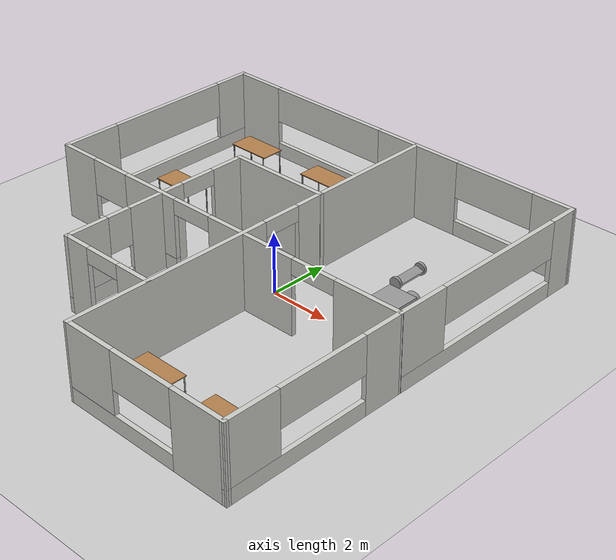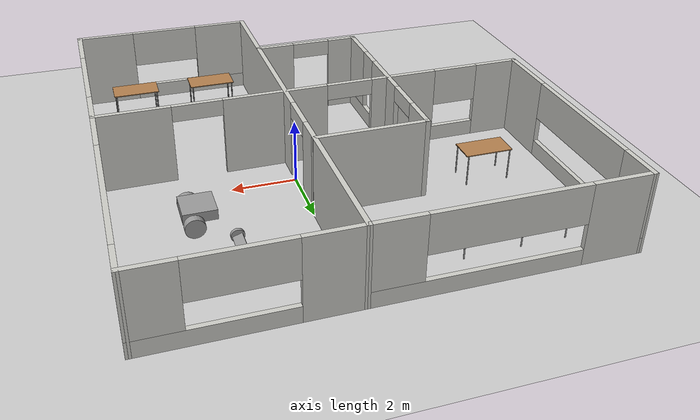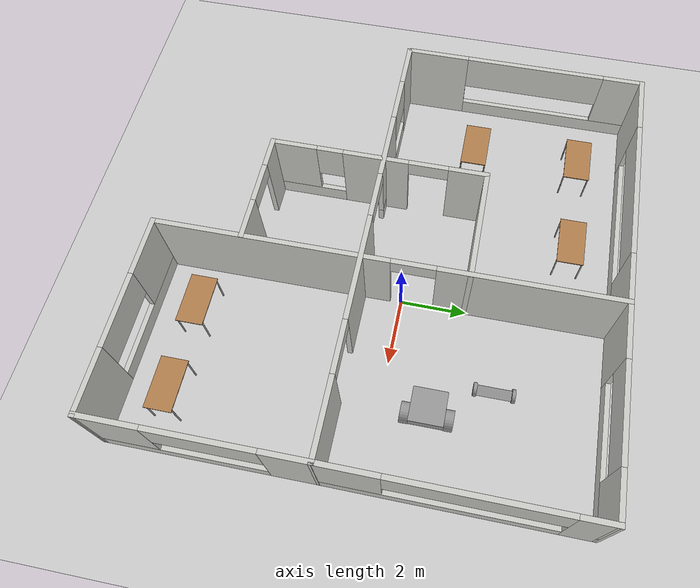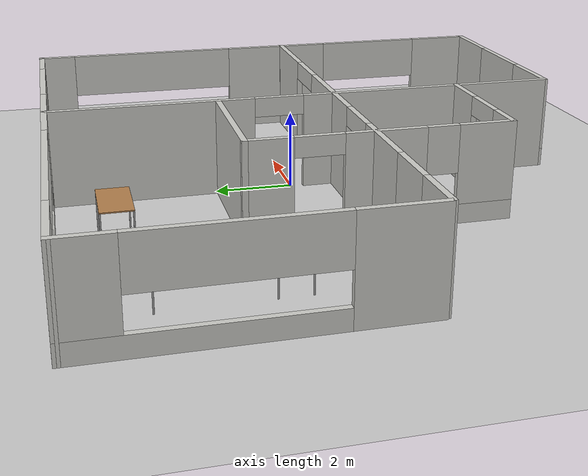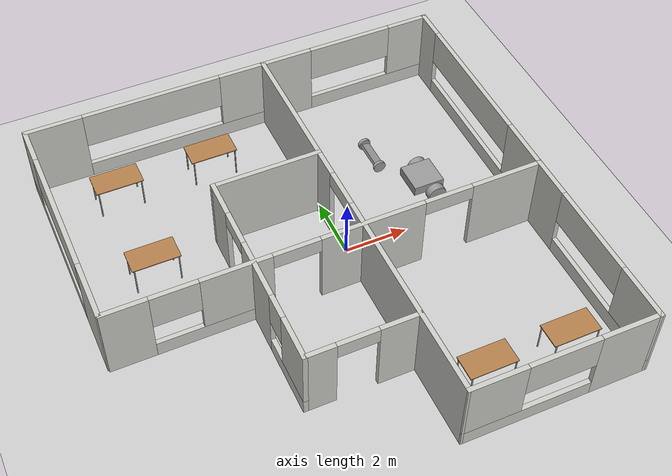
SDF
<sdf version="1.6">
 <world name="default">
  <plugin name="welcome" filename="libwelcome.so"/>
  <light name="sun" type="directional">
   <pose>0 0 10 0 -0 0</pose>
   <diffuse>0.8 0.8 0.8 1</diffuse>
   <specular>0.2 0.2 0.2 1</specular>
   <attenuation>
    <range>1000</range>
    <constant>0.9</constant>
    <linear>0.01</linear>
    <quadratic>0.001</quadratic>
   </attenuation>
   <direction>-0.5 0.1 -0.9</direction>
  </light>
  <model name="ground_plane">
   <static>1</static>
   <link name="link">
    <collision name="collision">
     <geometry><plane><normal>0 0 1</normal><size>100 100</size></plane></geometry>
     <surface>
      <contact><collide_bitmask>65535</collide_bitmask></contact>
      <friction><ode><mu>100</mu><mu2>50</mu2></ode></friction>
     </surface>
    </collision>
    <visual name="visual">
     <cast_shadows>0</cast_shadows>
     <geometry><plane><normal>0 0 1</normal><size>100 100</size></plane></geometry>
     <material>
      <script><uri>file://media/materials/scripts/gazebo.material</uri><name>Gazebo/Grey</name></script>
     </material>
    </visual>
   </link>
  </model>
  <gravity>0 0 -9.8</gravity>
  <magnetic_field>6e-06 2.3e-05 -4.2e-05</magnetic_field>
  <atmosphere type="adiabatic"/>
  <physics name="default_physics" default="0" type="ode">
   <max_step_size>0.001</max_step_size>
   <real_time_factor>1</real_time_factor>
   <real_time_update_rate>1000</real_time_update_rate>
  </physics>
  <scene><ambient>0.4 0.4 0.4 1</ambient><background>0.7 0.7 0.7 1</background><shadows>1</shadows></scene>
  <spherical_coordinates>
   <surface_model>EARTH_WGS84</surface_model>
   <latitude_deg>0</latitude_deg>
   <longitude_deg>0</longitude_deg>
   <elevation>0</elevation>
   <heading_deg>0</heading_deg>
  </spherical_coordinates>
  <model name="floor">
   <pose>-1.0352 -0.48407 0 0 -0 0</pose>
   <link name="Wall_0">
    <collision name="Wall_0_Collision">
     <geometry><box><size>3.5 0.15 2.5</size></box></geometry>
     <pose>0 0 1.25 0 -0 0</pose>
    </collision>
    <visual name="Wall_0_Visual">
     <pose>0 0 1.25 0 -0 0</pose>
     <geometry><box><size>3.5 0.15 2.5</size></box></geometry>
     <material>
      <script><uri>file://media/materials/scripts/gazebo.material</uri><name>Gazebo/CeilingTiled</name></script>
      <ambient>0.921569 0.807843 0.615686 1</ambient>
     </material>
     <meta><layer>0</layer></meta>
    </visual>
    <pose>-0.680453 2.40138 0 0 -0 0</pose>
   </link>
   <link name="Wall_10">
    <pose>3.86966 6.71461 0 0 -0 0</pose>
    <visual name="Wall_10_Visual_0">
     <pose>-2.10615 0 1.25 0 -0 0</pose>
     <geometry><box><size>1.71925 0.15 2.5</size></box></geometry>
     <material>
      <script><uri>file://media/materials/scripts/gazebo.material</uri><name>Gazebo/CeilingTiled</name></script>
      <ambient>0.996078 0.47451 0.0196078 1</ambient>
     </material>
     <meta><layer>0</layer></meta>
    </visual>
    <collision name="Wall_10_Collision_0">
     <geometry><box><size>1.71925 0.15 2.5</size></box></geometry>
     <pose>-2.10615 0 1.25 0 -0 0</pose>
    </collision>
    <visual name="Wall_10_Visual_1">
     <pose>0.859627 0 0.25 0 -0 0</pose>
     <geometry><box><size>4.2123 0.15 0.5</size></box></geometry>
     <material>
      <script><uri>file://media/materials/scripts/gazebo.material</uri><name>Gazebo/CeilingTiled</name></script>
      <ambient>0.996078 0.47451 0.0196078 1</ambient>
     </material>
     <meta><layer>0</layer></meta>
    </visual>
    <collision name="Wall_10_Collision_1">
     <geometry><box><size>4.2123 0.15 0.5</size></box></geometry>
     <pose>0.859627 0 0.25 0 -0 0</pose>
    </collision>
    <visual name="Wall_10_Visual_2">
     <pose>2.25525 0 1.5 0 -0 0</pose>
     <geometry><box><size>1.42105 0.15 2</size></box></geometry>
     <material>
      <script><uri>file://media/materials/scripts/gazebo.material</uri><name>Gazebo/CeilingTiled</name></script>
      <ambient>0.996078 0.47451 0.0196078 1</ambient>
     </material>
     <meta><layer>0</layer></meta>
    </visual>
    <collision name="Wall_10_Collision_2">
     <geometry><box><size>1.42105 0.15 2</size></box></geometry>
     <pose>2.25525 0 1.5 0 -0 0</pose>
    </collision>
    <visual name="Wall_10_Visual_3">
     <pose>0.1491 0 1.9 0 -0 0</pose>
     <geometry><box><size>2.79124 0.15 1.2</size></box></geometry>
     <material>
      <script><uri>file://media/materials/scripts/gazebo.material</uri><name>Gazebo/CeilingTiled</name></script>
      <ambient>0.996078 0.47451 0.0196078 1</ambient>
     </material>
     <meta><layer>0</layer></meta>
    </visual>
    <collision name="Wall_10_Collision_3">
     <geometry><box><size>2.79124 0.15 1.2</size></box></geometry>
     <pose>0.1491 0 1.9 0 -0 0</pose>
    </collision>
   </link>
   <link name="Wall_11">
    <pose>6.74514 3.02848 0 0 0 -1.57495</pose>
    <visual name="Wall_11_Visual_0">
     <pose>-3.24419 0 1.25 0 -0 0</pose>
     <geometry><box><size>1.03393 0.15 2.5</size></box></geometry>
     <material>
      <script><uri>file://media/materials/scripts/gazebo.material</uri><name>Gazebo/CeilingTiled</name></script>
      <ambient>0.996078 0.47451 0.0196078 1</ambient>
     </material>
     <meta><layer>0</layer></meta>
    </visual>
    <collision name="Wall_11_Collision_0">
     <geometry><box><size>1.03393 0.15 2.5</size></box></geometry>
     <pose>-3.24419 0 1.25 0 -0 0</pose>
    </collision>
    <visual name="Wall_11_Visual_1">
     <pose>0.516965 0 0.25 0 -0 0</pose>
     <geometry><box><size>6.48838 0.15 0.5</size></box></geometry>
     <material>
      <script><uri>file://media/materials/scripts/gazebo.material</uri><name>Gazebo/CeilingTiled</name></script>
      <ambient>0.996078 0.47451 0.0196078 1</ambient>
     </material>
     <meta><layer>0</layer></meta>
    </visual>
    <collision name="Wall_11_Collision_1">
     <geometry><box><size>6.48838 0.15 0.5</size></box></geometry>
     <pose>0.516965 0 0.25 0 -0 0</pose>
    </collision>
    <visual name="Wall_11_Visual_2">
     <pose>2.86792 0 1.5 0 -0 0</pose>
     <geometry><box><size>1.78646 0.15 2</size></box></geometry>
     <material>
      <script><uri>file://media/materials/scripts/gazebo.material</uri><name>Gazebo/CeilingTiled</name></script>
      <ambient>0.996078 0.47451 0.0196078 1</ambient>
     </material>
     <meta><layer>0</layer></meta>
    </visual>
    <collision name="Wall_11_Collision_2">
     <geometry><box><size>1.78646 0.15 2</size></box></geometry>
     <pose>2.86792 0 1.5 0 -0 0</pose>
    </collision>
    <visual name="Wall_11_Visual_3">
     <pose>-0.376266 0 1.9 0 -0 0</pose>
     <geometry><box><size>4.70192 0.15 1.2</size></box></geometry>
     <material>
      <script><uri>file://media/materials/scripts/gazebo.material</uri><name>Gazebo/CeilingTiled</name></script>
      <ambient>0.996078 0.47451 0.0196078 1</ambient>
     </material>
     <meta><layer>0</layer></meta>
    </visual>
    <collision name="Wall_11_Collision_3">
     <geometry><box><size>4.70192 0.15 1.2</size></box></geometry>
     <pose>-0.376266 0 1.9 0 -0 0</pose>
    </collision>
   </link>
   <link name="Wall_13">
    <pose>-6.76045 3.04378 0 0 -0 1.5708</pose>
    <visual name="Wall_13_Visual_0">
     <pose>-2.80286 0 1.25 0 -0 0</pose>
     <geometry><box><size>1.94712 0.15 2.5</size></box></geometry>
     <material>
      <script><uri>file://media/materials/scripts/gazebo.material</uri><name>Gazebo/CeilingTiled</name></script>
      <ambient>0.996078 0.47451 0.0196078 1</ambient>
     </material>
     <meta><layer>0</layer></meta>
    </visual>
    <collision name="Wall_13_Collision_0">
     <geometry><box><size>1.94712 0.15 2.5</size></box></geometry>
     <pose>-2.80286 0 1.25 0 -0 0</pose>
    </collision>
    <visual name="Wall_13_Visual_1">
     <pose>0.97356 0 0.25 0 -0 0</pose>
     <geometry><box><size>5.60571 0.15 0.5</size></box></geometry>
     <material>
      <script><uri>file://media/materials/scripts/gazebo.material</uri><name>Gazebo/CeilingTiled</name></script>
      <ambient>0.996078 0.47451 0.0196078 1</ambient>
     </material>
     <meta><layer>0</layer></meta>
    </visual>
    <collision name="Wall_13_Collision_1">
     <geometry><box><size>5.60571 0.15 0.5</size></box></geometry>
     <pose>0.97356 0 0.25 0 -0 0</pose>
    </collision>
    <visual name="Wall_13_Visual_2">
     <pose>3.1335 0 1.5 0 -0 0</pose>
     <geometry><box><size>1.28584 0.15 2</size></box></geometry>
     <material>
      <script><uri>file://media/materials/scripts/gazebo.material</uri><name>Gazebo/CeilingTiled</name></script>
      <ambient>0.996078 0.47451 0.0196078 1</ambient>
     </material>
     <meta><layer>0</layer></meta>
    </visual>
    <collision name="Wall_13_Collision_2">
     <geometry><box><size>1.28584 0.15 2</size></box></geometry>
     <pose>3.1335 0 1.5 0 -0 0</pose>
    </collision>
    <visual name="Wall_13_Visual_3">
     <pose>0.330641 0 1.9 0 -0 0</pose>
     <geometry><box><size>4.31987 0.15 1.2</size></box></geometry>
     <material>
      <script><uri>file://media/materials/scripts/gazebo.material</uri><name>Gazebo/CeilingTiled</name></script>
      <ambient>0.996078 0.47451 0.0196078 1</ambient>
     </material>
     <meta><layer>0</layer></meta>
    </visual>
    <collision name="Wall_13_Collision_3">
     <geometry><box><size>4.31987 0.15 1.2</size></box></geometry>
     <pose>0.330641 0 1.9 0 -0 0</pose>
    </collision>
   </link>
   <link name="Wall_14">
    <pose>-2.93667 6.7299 0 0 0 -0.004</pose>
    <visual name="Wall_14_Visual_0">
     <pose>-2.97598 0 1.25 0 -0 0</pose>
     <geometry><box><size>1.84566 0.15 2.5</size></box></geometry>
     <material>
      <script><uri>file://media/materials/scripts/gazebo.material</uri><name>Gazebo/CeilingTiled</name></script>
      <ambient>0.996078 0.47451 0.0196078 1</ambient>
     </material>
     <meta><layer>0</layer></meta>
    </visual>
    <collision name="Wall_14_Collision_0">
     <geometry><box><size>1.84566 0.15 2.5</size></box></geometry>
     <pose>-2.97598 0 1.25 0 -0 0</pose>
    </collision>
    <visual name="Wall_14_Visual_1">
     <pose>0.922833 0 0.25 0 -0 0</pose>
     <geometry><box><size>5.95195 0.15 0.5</size></box></geometry>
     <material>
      <script><uri>file://media/materials/scripts/gazebo.material</uri><name>Gazebo/CeilingTiled</name></script>
      <ambient>0.996078 0.47451 0.0196078 1</ambient>
     </material>
     <meta><layer>0</layer></meta>
    </visual>
    <collision name="Wall_14_Collision_1">
     <geometry><box><size>5.95195 0.15 0.5</size></box></geometry>
     <pose>0.922833 0 0.25 0 -0 0</pose>
    </collision>
    <visual name="Wall_14_Visual_2">
     <pose>3.15291 0 1.5 0 -0 0</pose>
     <geometry><box><size>1.49179 0.15 2</size></box></geometry>
     <material>
      <script><uri>file://media/materials/scripts/gazebo.material</uri><name>Gazebo/CeilingTiled</name></script>
      <ambient>0.996078 0.47451 0.0196078 1</ambient>
     </material>
     <meta><layer>0</layer></meta>
    </visual>
    <collision name="Wall_14_Collision_2">
     <geometry><box><size>1.49179 0.15 2</size></box></geometry>
     <pose>3.15291 0 1.5 0 -0 0</pose>
    </collision>
    <visual name="Wall_14_Visual_3">
     <pose>0.176935 0 1.9 0 -0 0</pose>
     <geometry><box><size>4.46016 0.15 1.2</size></box></geometry>
     <material>
      <script><uri>file://media/materials/scripts/gazebo.material</uri><name>Gazebo/CeilingTiled</name></script>
      <ambient>0.996078 0.47451 0.0196078 1</ambient>
     </material>
     <meta><layer>0</layer></meta>
    </visual>
    <collision name="Wall_14_Collision_3">
     <geometry><box><size>4.46016 0.15 1.2</size></box></geometry>
     <pose>0.176935 0 1.9 0 -0 0</pose>
    </collision>
   </link>
   <link name="Wall_16">
    <pose>-2.35545 -0.856476 0 0 0 -1.5708</pose>
    <visual name="Wall_16_Visual_0">
     <pose>-2.72153 0 1.25 0 -0 0</pose>
     <geometry><box><size>1.22295 0.15 2.5</size></box></geometry>
     <material>
      <script><uri>file://media/materials/scripts/gazebo.material</uri><name>Gazebo/CeilingTiled</name></script>
      <ambient>0.996078 0.47451 0.0196078 1</ambient>
     </material>
     <meta><layer>0</layer></meta>
    </visual>
    <collision name="Wall_16_Collision_0">
     <geometry><box><size>1.22295 0.15 2.5</size></box></geometry>
     <pose>-2.72153 0 1.25 0 -0 0</pose>
    </collision>
    <visual name="Wall_16_Visual_1">
     <pose>0.091031 0 1.25 0 -0 0</pose>
     <geometry><box><size>2.00077 0.15 2.5</size></box></geometry>
     <material>
      <script><uri>file://media/materials/scripts/gazebo.material</uri><name>Gazebo/CeilingTiled</name></script>
      <ambient>0.996078 0.47451 0.0196078 1</ambient>
     </material>
     <meta><layer>0</layer></meta>
    </visual>
    <collision name="Wall_16_Collision_1">
     <geometry><box><size>2.00077 0.15 2.5</size></box></geometry>
     <pose>0.091031 0 1.25 0 -0 0</pose>
    </collision>
    <visual name="Wall_16_Visual_2">
     <pose>2.21221 0 0.25 0 -0 0</pose>
     <geometry><box><size>2.24159 0.15 0.5</size></box></geometry>
     <material>
      <script><uri>file://media/materials/scripts/gazebo.material</uri><name>Gazebo/CeilingTiled</name></script>
      <ambient>0.996078 0.47451 0.0196078 1</ambient>
     </material>
     <meta><layer>0</layer></meta>
    </visual>
    <collision name="Wall_16_Collision_2">
     <geometry><box><size>2.24159 0.15 0.5</size></box></geometry>
     <pose>2.21221 0 0.25 0 -0 0</pose>
    </collision>
    <visual name="Wall_16_Visual_3">
     <pose>2.61221 0 1.5 0 -0 0</pose>
     <geometry><box><size>1.44159 0.15 2</size></box></geometry>
     <material>
      <script><uri>file://media/materials/scripts/gazebo.material</uri><name>Gazebo/CeilingTiled</name></script>
      <ambient>0.996078 0.47451 0.0196078 1</ambient>
     </material>
     <meta><layer>0</layer></meta>
    </visual>
    <collision name="Wall_16_Collision_3">
     <geometry><box><size>1.44159 0.15 2</size></box></geometry>
     <pose>2.61221 0 1.5 0 -0 0</pose>
    </collision>
    <visual name="Wall_16_Visual_4">
     <pose>1.49142 0 1.9 0 -0 0</pose>
     <geometry><box><size>0.8 0.15 1.2</size></box></geometry>
     <material>
      <script><uri>file://media/materials/scripts/gazebo.material</uri><name>Gazebo/CeilingTiled</name></script>
      <ambient>0.996078 0.47451 0.0196078 1</ambient>
     </material>
     <meta><layer>0</layer></meta>
    </visual>
    <collision name="Wall_16_Collision_4">
     <geometry><box><size>0.8 0.15 1.2</size></box></geometry>
     <pose>1.49142 0 1.9 0 -0 0</pose>
    </collision>
    <visual name="Wall_16_Visual_5">
     <pose>-1.5097 0 2.25 0 -0 0</pose>
     <geometry><box><size>1.2007 0.15 0.5</size></box></geometry>
     <material>
      <script><uri>file://media/materials/scripts/gazebo.material</uri><name>Gazebo/CeilingTiled</name></script>
      <ambient>0.996078 0.47451 0.0196078 1</ambient>
     </material>
     <meta><layer>0</layer></meta>
    </visual>
    <collision name="Wall_16_Collision_5">
     <geometry><box><size>1.2007 0.15 0.5</size></box></geometry>
     <pose>-1.5097 0 2.25 0 -0 0</pose>
    </collision>
   </link>
   <link name="Wall_19">
    <pose>-0.680453 -4.11433 0 0 -0 0</pose>
    <visual name="Wall_19_Visual_0">
     <pose>-1.25768 0 1.25 0 -0 0</pose>
     <geometry><box><size>0.984642 0.15 2.5</size></box></geometry>
     <material>
      <script><uri>file://media/materials/scripts/gazebo.material</uri><name>Gazebo/CeilingTiled</name></script>
      <ambient>0.921569 0.807843 0.615686 1</ambient>
     </material>
     <meta><layer>0</layer></meta>
    </visual>
    <collision name="Wall_19_Collision_0">
     <geometry><box><size>0.984642 0.15 2.5</size></box></geometry>
     <pose>-1.25768 0 1.25 0 -0 0</pose>
    </collision>
    <visual name="Wall_19_Visual_1">
     <pose>1.1158 0 1.25 0 -0 0</pose>
     <geometry><box><size>1.2684 0.15 2.5</size></box></geometry>
     <material>
      <script><uri>file://media/materials/scripts/gazebo.material</uri><name>Gazebo/CeilingTiled</name></script>
      <ambient>0.921569 0.807843 0.615686 1</ambient>
     </material>
     <meta><layer>0</layer></meta>
    </visual>
    <collision name="Wall_19_Collision_1">
     <geometry><box><size>1.2684 0.15 2.5</size></box></geometry>
     <pose>1.1158 0 1.25 0 -0 0</pose>
    </collision>
    <visual name="Wall_19_Visual_2">
     <pose>-0.141879 0 2.25 0 -0 0</pose>
     <geometry><box><size>1.24696 0.15 0.5</size></box></geometry>
     <material>
      <script><uri>file://media/materials/scripts/gazebo.material</uri><name>Gazebo/CeilingTiled</name></script>
      <ambient>0.921569 0.807843 0.615686 1</ambient>
     </material>
     <meta><layer>0</layer></meta>
    </visual>
    <collision name="Wall_19_Collision_2">
     <geometry><box><size>1.24696 0.15 0.5</size></box></geometry>
     <pose>-0.141879 0 2.25 0 -0 0</pose>
    </collision>
   </link>
   <link name="Wall_6">
    <pose>-5e-06 -0.68823 0 0 -0 0.004545</pose>
    <visual name="Wall_6_Visual_0">
     <pose>-6.09809 0 1.25 0 -0 0</pose>
     <geometry><box><size>1.41365 0.15 2.5</size></box></geometry>
     <material>
      <script><uri>file://media/materials/scripts/gazebo.material</uri><name>Gazebo/CeilingTiled</name></script>
      <ambient>0.921569 0.807843 0.615686 1</ambient>
     </material>
     <meta><layer>0</layer></meta>
    </visual>
    <collision name="Wall_6_Collision_0">
     <geometry><box><size>1.41365 0.15 2.5</size></box></geometry>
     <pose>-6.09809 0 1.25 0 -0 0</pose>
    </collision>
    <visual name="Wall_6_Visual_1">
     <pose>1.30078 0 1.25 0 -0 0</pose>
     <geometry><box><size>3.27649 0.15 2.5</size></box></geometry>
     <material>
      <script><uri>file://media/materials/scripts/gazebo.material</uri><name>Gazebo/CeilingTiled</name></script>
      <ambient>0.921569 0.807843 0.615686 1</ambient>
     </material>
     <meta><layer>0</layer></meta>
    </visual>
    <collision name="Wall_6_Collision_1">
     <geometry><box><size>3.27649 0.15 2.5</size></box></geometry>
     <pose>1.30078 0 1.25 0 -0 0</pose>
    </collision>
    <visual name="Wall_6_Visual_2">
     <pose>5.64099 0 1.25 0 -0 0</pose>
     <geometry><box><size>2.32786 0.15 2.5</size></box></geometry>
     <material>
      <script><uri>file://media/materials/scripts/gazebo.material</uri><name>Gazebo/CeilingTiled</name></script>
      <ambient>0.921569 0.807843 0.615686 1</ambient>
     </material>
     <meta><layer>0</layer></meta>
    </visual>
    <collision name="Wall_6_Collision_2">
     <geometry><box><size>2.32786 0.15 2.5</size></box></geometry>
     <pose>5.64099 0 1.25 0 -0 0</pose>
    </collision>
    <visual name="Wall_6_Visual_3">
     <pose>-3.59193 0 0.25 0 -0 0</pose>
     <geometry><box><size>3.59867 0.15 0.5</size></box></geometry>
     <material>
      <script><uri>file://media/materials/scripts/gazebo.material</uri><name>Gazebo/CeilingTiled</name></script>
      <ambient>0.921569 0.807843 0.615686 1</ambient>
     </material>
     <meta><layer>0</layer></meta>
    </visual>
    <collision name="Wall_6_Collision_3">
     <geometry><box><size>3.59867 0.15 0.5</size></box></geometry>
     <pose>-3.59193 0 0.25 0 -0 0</pose>
    </collision>
    <visual name="Wall_6_Visual_4">
     <pose>-2.86816 0 1.5 0 -0 0</pose>
     <geometry><box><size>2.15113 0.15 2</size></box></geometry>
     <material>
      <script><uri>file://media/materials/scripts/gazebo.material</uri><name>Gazebo/CeilingTiled</name></script>
      <ambient>0.921569 0.807843 0.615686 1</ambient>
     </material>
     <meta><layer>0</layer></meta>
    </visual>
    <collision name="Wall_6_Collision_4">
     <geometry><box><size>2.15113 0.15 2</size></box></geometry>
     <pose>-2.86816 0 1.5 0 -0 0</pose>
    </collision>
    <visual name="Wall_6_Visual_5">
     <pose>-4.6675 0 1.9 0 -0 0</pose>
     <geometry><box><size>1.44755 0.15 1.2</size></box></geometry>
     <material>
      <script><uri>file://media/materials/scripts/gazebo.material</uri><name>Gazebo/CeilingTiled</name></script>
      <ambient>0.921569 0.807843 0.615686 1</ambient>
     </material>
     <meta><layer>0</layer></meta>
    </visual>
    <collision name="Wall_6_Collision_5">
     <geometry><box><size>1.44755 0.15 1.2</size></box></geometry>
     <pose>-4.6675 0 1.9 0 -0 0</pose>
    </collision>
    <visual name="Wall_6_Visual_6">
     <pose>3.70804 0 2.25 0 -0 0</pose>
     <geometry><box><size>1.53804 0.15 0.5</size></box></geometry>
     <material>
      <script><uri>file://media/materials/scripts/gazebo.material</uri><name>Gazebo/CeilingTiled</name></script>
      <ambient>0.921569 0.807843 0.615686 1</ambient>
     </material>
     <meta><layer>0</layer></meta>
    </visual>
    <collision name="Wall_6_Collision_6">
     <geometry><box><size>1.53804 0.15 0.5</size></box></geometry>
     <pose>3.70804 0 2.25 0 -0 0</pose>
    </collision>
    <visual name="Wall_6_Visual_7">
     <pose>-1.06503 0 2.25 0 -0 0</pose>
     <geometry><box><size>1.45513 0.15 0.5</size></box></geometry>
     <material>
      <script><uri>file://media/materials/scripts/gazebo.material</uri><name>Gazebo/CeilingTiled</name></script>
      <ambient>0.921569 0.807843 0.615686 1</ambient>
     </material>
     <meta><layer>0</layer></meta>
    </visual>
    <collision name="Wall_6_Collision_7">
     <geometry><box><size>1.45513 0.15 0.5</size></box></geometry>
     <pose>-1.06503 0 2.25 0 -0 0</pose>
    </collision>
   </link>
   <link name="Wall_7">
    <pose>6.72985 -3.70137 0 0 0 -1.5708</pose>
    <visual name="Wall_7_Visual_0">
     <pose>-2.40595 0 1.25 0 -0 0</pose>
     <geometry><box><size>1.42563 0.15 2.5</size></box></geometry>
     <material>
      <script><uri>file://media/materials/scripts/gazebo.material</uri><name>Gazebo/CeilingTiled</name></script>
      <ambient>0.996078 0.47451 0.0196078 1</ambient>
     </material>
     <meta><layer>0</layer></meta>
    </visual>
    <collision name="Wall_7_Collision_0">
     <geometry><box><size>1.42563 0.15 2.5</size></box></geometry>
     <pose>-2.40595 0 1.25 0 -0 0</pose>
    </collision>
    <visual name="Wall_7_Visual_1">
     <pose>0.712816 0 0.25 0 -0 0</pose>
     <geometry><box><size>4.8119 0.15 0.5</size></box></geometry>
     <material>
      <script><uri>file://media/materials/scripts/gazebo.material</uri><name>Gazebo/CeilingTiled</name></script>
      <ambient>0.996078 0.47451 0.0196078 1</ambient>
     </material>
     <meta><layer>0</layer></meta>
    </visual>
    <collision name="Wall_7_Collision_1">
     <geometry><box><size>4.8119 0.15 0.5</size></box></geometry>
     <pose>0.712816 0 0.25 0 -0 0</pose>
    </collision>
    <visual name="Wall_7_Visual_2">
     <pose>2.21906 0 1.5 0 -0 0</pose>
     <geometry><box><size>1.79941 0.15 2</size></box></geometry>
     <material>
      <script><uri>file://media/materials/scripts/gazebo.material</uri><name>Gazebo/CeilingTiled</name></script>
      <ambient>0.996078 0.47451 0.0196078 1</ambient>
     </material>
     <meta><layer>0</layer></meta>
    </visual>
    <collision name="Wall_7_Collision_2">
     <geometry><box><size>1.79941 0.15 2</size></box></geometry>
     <pose>2.21906 0 1.5 0 -0 0</pose>
    </collision>
    <visual name="Wall_7_Visual_3">
     <pose>-0.186888 0 1.9 0 -0 0</pose>
     <geometry><box><size>3.01249 0.15 1.2</size></box></geometry>
     <material>
      <script><uri>file://media/materials/scripts/gazebo.material</uri><name>Gazebo/CeilingTiled</name></script>
      <ambient>0.996078 0.47451 0.0196078 1</ambient>
     </material>
     <meta><layer>0</layer></meta>
    </visual>
    <collision name="Wall_7_Collision_3">
     <geometry><box><size>3.01249 0.15 1.2</size></box></geometry>
     <pose>-0.186888 0 1.9 0 -0 0</pose>
    </collision>
   </link>
   <link name="Wall_8">
    <pose>3.86966 -6.7298 0 0 -0 3.13625</pose>
    <visual name="Wall_8_Visual_0">
     <pose>-1.99488 0 1.25 0 -0 0</pose>
     <geometry><box><size>1.8807 0.15 2.5</size></box></geometry>
     <material>
      <script><uri>file://media/materials/scripts/gazebo.material</uri><name>Gazebo/CeilingTiled</name></script>
      <ambient>0.996078 0.47451 0.0196078 1</ambient>
     </material>
     <meta><layer>0</layer></meta>
    </visual>
    <collision name="Wall_8_Collision_0">
     <geometry><box><size>1.8807 0.15 2.5</size></box></geometry>
     <pose>-1.99488 0 1.25 0 -0 0</pose>
    </collision>
    <visual name="Wall_8_Visual_1">
     <pose>0.940351 0 0.25 0 -0 0</pose>
     <geometry><box><size>3.98975 0.15 0.5</size></box></geometry>
     <material>
      <script><uri>file://media/materials/scripts/gazebo.material</uri><name>Gazebo/CeilingTiled</name></script>
      <ambient>0.996078 0.47451 0.0196078 1</ambient>
     </material>
     <meta><layer>0</layer></meta>
    </visual>
    <collision name="Wall_8_Collision_1">
     <geometry><box><size>3.98975 0.15 0.5</size></box></geometry>
     <pose>0.940351 0 0.25 0 -0 0</pose>
    </collision>
    <visual name="Wall_8_Visual_2">
     <pose>2.03431 0 1.5 0 -0 0</pose>
     <geometry><box><size>1.80183 0.15 2</size></box></geometry>
     <material>
      <script><uri>file://media/materials/scripts/gazebo.material</uri><name>Gazebo/CeilingTiled</name></script>
      <ambient>0.996078 0.47451 0.0196078 1</ambient>
     </material>
     <meta><layer>0</layer></meta>
    </visual>
    <collision name="Wall_8_Collision_2">
     <geometry><box><size>1.80183 0.15 2</size></box></geometry>
     <pose>2.03431 0 1.5 0 -0 0</pose>
    </collision>
    <visual name="Wall_8_Visual_3">
     <pose>0.039436 0 1.9 0 -0 0</pose>
     <geometry><box><size>2.18792 0.15 1.2</size></box></geometry>
     <material>
      <script><uri>file://media/materials/scripts/gazebo.material</uri><name>Gazebo/CeilingTiled</name></script>
      <ambient>0.996078 0.47451 0.0196078 1</ambient>
     </material>
     <meta><layer>0</layer></meta>
    </visual>
    <collision name="Wall_8_Collision_3">
     <geometry><box><size>2.18792 0.15 1.2</size></box></geometry>
     <pose>0.039436 0 1.9 0 -0 0</pose>
    </collision>
   </link>
   <link name="Wall_9">
    <pose>0.994177 5e-05 0 0 -0 1.57307</pose>
    <visual name="Wall_9_Visual_0">
     <pose>-3.31645 0 1.25 0 -0 0</pose>
     <geometry><box><size>6.94625 0.15 2.5</size></box></geometry>
     <material>
      <script><uri>file://media/materials/scripts/gazebo.material</uri><name>Gazebo/CeilingTiled</name></script>
      <ambient>0.921569 0.807843 0.615686 1</ambient>
     </material>
     <meta><layer>0</layer></meta>
    </visual>
    <collision name="Wall_9_Collision_0">
     <geometry><box><size>6.94625 0.15 2.5</size></box></geometry>
     <pose>-3.31645 0 1.25 0 -0 0</pose>
    </collision>
    <visual name="Wall_9_Visual_1">
     <pose>4.11974 0 1.25 0 -0 0</pose>
     <geometry><box><size>5.33967 0.15 2.5</size></box></geometry>
     <material>
      <script><uri>file://media/materials/scripts/gazebo.material</uri><name>Gazebo/CeilingTiled</name></script>
      <ambient>0.921569 0.807843 0.615686 1</ambient>
     </material>
     <meta><layer>0</layer></meta>
    </visual>
    <collision name="Wall_9_Collision_1">
     <geometry><box><size>5.33967 0.15 2.5</size></box></geometry>
     <pose>4.11974 0 1.25 0 -0 0</pose>
    </collision>
    <visual name="Wall_9_Visual_2">
     <pose>0.803289 0 2.25 0 -0 0</pose>
     <geometry><box><size>1.29322 0.15 0.5</size></box></geometry>
     <material>
      <script><uri>file://media/materials/scripts/gazebo.material</uri><name>Gazebo/CeilingTiled</name></script>
      <ambient>0.921569 0.807843 0.615686 1</ambient>
     </material>
     <meta><layer>0</layer></meta>
    </visual>
    <collision name="Wall_9_Collision_2">
     <geometry><box><size>1.29322 0.15 0.5</size></box></geometry>
     <pose>0.803289 0 2.25 0 -0 0</pose>
    </collision>
   </link>
   <static>1</static>
  </model>
  <model name="table">
   <static>1</static>
   <link name="link">
    <collision name="surface">
     <pose>0 0 1 0 -0 0</pose>
     <geometry><box><size>1.5 0.8 0.03</size></box></geometry>
     <surface><friction><ode><mu>0.6</mu><mu2>0.6</mu2></ode></friction></surface>
    </collision>
    <visual name="visual1">
     <pose>0 0 1 0 -0 0</pose>
     <geometry><box><size>1.5 0.8 0.03</size></box></geometry>
     <material>
      <script><uri>file://media/materials/scripts/gazebo.material</uri><name>Gazebo/Wood</name></script>
     </material>
    </visual>
    <collision name="front_left_leg">
     <pose>0.68 0.38 0.5 0 -0 0</pose>
     <geometry><cylinder><radius>0.02</radius><length>1</length></cylinder></geometry>
    </collision>
    <visual name="front_left_leg">
     <pose>0.68 0.38 0.5 0 -0 0</pose>
     <geometry><cylinder><radius>0.02</radius><length>1</length></cylinder></geometry>
     <material>
      <script><uri>file://media/materials/scripts/gazebo.material</uri><name>Gazebo/Grey</name></script>
     </material>
    </visual>
    <collision name="front_right_leg">
     <pose>0.68 -0.38 0.5 0 -0 0</pose>
     <geometry><cylinder><radius>0.02</radius><length>1</length></cylinder></geometry>
    </collision>
    <visual name="front_right_leg">
     <pose>0.68 -0.38 0.5 0 -0 0</pose>
     <geometry><cylinder><radius>0.02</radius><length>1</length></cylinder></geometry>
     <material>
      <script><uri>file://media/materials/scripts/gazebo.material</uri><name>Gazebo/Grey</name></script>
     </material>
    </visual>
    <collision name="back_right_leg">
     <pose>-0.68 -0.38 0.5 0 -0 0</pose>
     <geometry><cylinder><radius>0.02</radius><length>1</length></cylinder></geometry>
    </collision>
    <visual name="back_right_leg">
     <pose>-0.68 -0.38 0.5 0 -0 0</pose>
     <geometry><cylinder><radius>0.02</radius><length>1</length></cylinder></geometry>
     <material>
      <script><uri>file://media/materials/scripts/gazebo.material</uri><name>Gazebo/Grey</name></script>
     </material>
    </visual>
    <collision name="back_left_leg">
     <pose>-0.68 0.38 0.5 0 -0 0</pose>
     <geometry><cylinder><radius>0.02</radius><length>1</length></cylinder></geometry>
    </collision>
    <visual name="back_left_leg">
     <pose>-0.68 0.38 0.5 0 -0 0</pose>
     <geometry><cylinder><radius>0.02</radius><length>1</length></cylinder></geometry>
     <material>
      <script><uri>file://media/materials/scripts/gazebo.material</uri><name>Gazebo/Grey</name></script>
     </material>
    </visual>
   </link>
   <pose>-5.60527 4.7376 0 0 -0 0</pose>
  </model>
  <model name="table_clone">
   <static>1</static>
   <link name="link">
    <collision name="surface">
     <pose>0 0 1 0 -0 0</pose>
     <geometry><box><size>1.5 0.8 0.03</size></box></geometry>
     <surface><friction><ode><mu>0.6</mu><mu2>0.6</mu2></ode></friction></surface>
    </collision>
    <visual name="visual1">
     <pose>0 0 1 0 -0 0</pose>
     <geometry><box><size>1.5 0.8 0.03</size></box></geometry>
     <material>
      <script><uri>file://media/materials/scripts/gazebo.material</uri><name>Gazebo/Wood</name></script>
     </material>
    </visual>
    <collision name="front_left_leg">
     <pose>0.68 0.38 0.5 0 -0 0</pose>
     <geometry><cylinder><radius>0.02</radius><length>1</length></cylinder></geometry>
    </collision>
    <visual name="front_left_leg">
     <pose>0.68 0.38 0.5 0 -0 0</pose>
     <geometry><cylinder><radius>0.02</radius><length>1</length></cylinder></geometry>
     <material>
      <script><uri>file://media/materials/scripts/gazebo.material</uri><name>Gazebo/Grey</name></script>
     </material>
    </visual>
    <collision name="front_right_leg">
     <pose>0.68 -0.38 0.5 0 -0 0</pose>
     <geometry><cylinder><radius>0.02</radius><length>1</length></cylinder></geometry>
    </collision>
    <visual name="front_right_leg">
     <pose>0.68 -0.38 0.5 0 -0 0</pose>
     <geometry><cylinder><radius>0.02</radius><length>1</length></cylinder></geometry>
     <material>
      <script><uri>file://media/materials/scripts/gazebo.material</uri><name>Gazebo/Grey</name></script>
     </material>
    </visual>
    <collision name="back_right_leg">
     <pose>-0.68 -0.38 0.5 0 -0 0</pose>
     <geometry><cylinder><radius>0.02</radius><length>1</length></cylinder></geometry>
    </collision>
    <visual name="back_right_leg">
     <pose>-0.68 -0.38 0.5 0 -0 0</pose>
     <geometry><cylinder><radius>0.02</radius><length>1</length></cylinder></geometry>
     <material>
      <script><uri>file://media/materials/scripts/gazebo.material</uri><name>Gazebo/Grey</name></script>
     </material>
    </visual>
    <collision name="back_left_leg">
     <pose>-0.68 0.38 0.5 0 -0 0</pose>
     <geometry><cylinder><radius>0.02</radius><length>1</length></cylinder></geometry>
    </collision>
    <visual name="back_left_leg">
     <pose>-0.68 0.38 0.5 0 -0 0</pose>
     <geometry><cylinder><radius>0.02</radius><length>1</length></cylinder></geometry>
     <material>
      <script><uri>file://media/materials/scripts/gazebo.material</uri><name>Gazebo/Grey</name></script>
     </material>
    </visual>
   </link>
   <pose>-2.51058 4.78693 0 0 -0 0</pose>
  </model>
  <model name="table_clone_0">
   <static>1</static>
   <link name="link">
    <collision name="surface">
     <pose>0 0 1 0 -0 0</pose>
     <geometry><box><size>1.5 0.8 0.03</size></box></geometry>
     <surface><friction><ode><mu>0.6</mu><mu2>0.6</mu2></ode></friction></surface>
    </collision>
    <visual name="visual1">
     <pose>0 0 1 0 -0 0</pose>
     <geometry><box><size>1.5 0.8 0.03</size></box></geometry>
     <material>
      <script><uri>file://media/materials/scripts/gazebo.material</uri><name>Gazebo/Wood</name></script>
     </material>
    </visual>
    <collision name="front_left_leg">
     <pose>0.68 0.38 0.5 0 -0 0</pose>
     <geometry><cylinder><radius>0.02</radius><length>1</length></cylinder></geometry>
    </collision>
    <visual name="front_left_leg">
     <pose>0.68 0.38 0.5 0 -0 0</pose>
     <geometry><cylinder><radius>0.02</radius><length>1</length></cylinder></geometry>
     <material>
      <script><uri>file://media/materials/scripts/gazebo.material</uri><name>Gazebo/Grey</name></script>
     </material>
    </visual>
    <collision name="front_right_leg">
     <pose>0.68 -0.38 0.5 0 -0 0</pose>
     <geometry><cylinder><radius>0.02</radius><length>1</length></cylinder></geometry>
    </collision>
    <visual name="front_right_leg">
     <pose>0.68 -0.38 0.5 0 -0 0</pose>
     <geometry><cylinder><radius>0.02</radius><length>1</length></cylinder></geometry>
     <material>
      <script><uri>file://media/materials/scripts/gazebo.material</uri><name>Gazebo/Grey</name></script>
     </material>
    </visual>
    <collision name="back_right_leg">
     <pose>-0.68 -0.38 0.5 0 -0 0</pose>
     <geometry><cylinder><radius>0.02</radius><length>1</length></cylinder></geometry>
    </collision>
    <visual name="back_right_leg">
     <pose>-0.68 -0.38 0.5 0 -0 0</pose>
     <geometry><cylinder><radius>0.02</radius><length>1</length></cylinder></geometry>
     <material>
      <script><uri>file://media/materials/scripts/gazebo.material</uri><name>Gazebo/Grey</name></script>
     </material>
    </visual>
    <collision name="back_left_leg">
     <pose>-0.68 0.38 0.5 0 -0 0</pose>
     <geometry><cylinder><radius>0.02</radius><length>1</length></cylinder></geometry>
    </collision>
    <visual name="back_left_leg">
     <pose>-0.68 0.38 0.5 0 -0 0</pose>
     <geometry><cylinder><radius>0.02</radius><length>1</length></cylinder></geometry>
     <material>
      <script><uri>file://media/materials/scripts/gazebo.material</uri><name>Gazebo/Grey</name></script>
     </material>
    </visual>
   </link>
   <pose>-5.56259 1.43439 0 0 -0 0</pose>
  </model>
  <model name="table_clone_1">
   <static>1</static>
   <link name="link">
    <collision name="surface">
     <pose>0 0 1 0 -0 0</pose>
     <geometry><box><size>1.5 0.8 0.03</size></box></geometry>
     <surface><friction><ode><mu>0.6</mu><mu2>0.6</mu2></ode></friction></surface>
    </collision>
    <visual name="visual1">
     <pose>0 0 1 0 -0 0</pose>
     <geometry><box><size>1.5 0.8 0.03</size></box></geometry>
     <material>
      <script><uri>file://media/materials/scripts/gazebo.material</uri><name>Gazebo/Wood</name></script>
     </material>
    </visual>
    <collision name="front_left_leg">
     <pose>0.68 0.38 0.5 0 -0 0</pose>
     <geometry><cylinder><radius>0.02</radius><length>1</length></cylinder></geometry>
    </collision>
    <visual name="front_left_leg">
     <pose>0.68 0.38 0.5 0 -0 0</pose>
     <geometry><cylinder><radius>0.02</radius><length>1</length></cylinder></geometry>
     <material>
      <script><uri>file://media/materials/scripts/gazebo.material</uri><name>Gazebo/Grey</name></script>
     </material>
    </visual>
    <collision name="front_right_leg">
     <pose>0.68 -0.38 0.5 0 -0 0</pose>
     <geometry><cylinder><radius>0.02</radius><length>1</length></cylinder></geometry>
    </collision>
    <visual name="front_right_leg">
     <pose>0.68 -0.38 0.5 0 -0 0</pose>
     <geometry><cylinder><radius>0.02</radius><length>1</length></cylinder></geometry>
     <material>
      <script><uri>file://media/materials/scripts/gazebo.material</uri><name>Gazebo/Grey</name></script>
     </material>
    </visual>
    <collision name="back_right_leg">
     <pose>-0.68 -0.38 0.5 0 -0 0</pose>
     <geometry><cylinder><radius>0.02</radius><length>1</length></cylinder></geometry>
    </collision>
    <visual name="back_right_leg">
     <pose>-0.68 -0.38 0.5 0 -0 0</pose>
     <geometry><cylinder><radius>0.02</radius><length>1</length></cylinder></geometry>
     <material>
      <script><uri>file://media/materials/scripts/gazebo.material</uri><name>Gazebo/Grey</name></script>
     </material>
    </visual>
    <collision name="back_left_leg">
     <pose>-0.68 0.38 0.5 0 -0 0</pose>
     <geometry><cylinder><radius>0.02</radius><length>1</length></cylinder></geometry>
    </collision>
    <visual name="back_left_leg">
     <pose>-0.68 0.38 0.5 0 -0 0</pose>
     <geometry><cylinder><radius>0.02</radius><length>1</length></cylinder></geometry>
     <material>
      <script><uri>file://media/materials/scripts/gazebo.material</uri><name>Gazebo/Grey</name></script>
     </material>
    </visual>
   </link>
   <pose>1.50221 -5.75834 0 0 -0 0</pose>
  </model>
  <model name="table_clone_2">
   <static>1</static>
   <link name="link">
    <collision name="surface">
     <pose>0 0 1 0 -0 0</pose>
     <geometry><box><size>1.5 0.8 0.03</size></box></geometry>
     <surface><friction><ode><mu>0.6</mu><mu2>0.6</mu2></ode></friction></surface>
    </collision>
    <visual name="visual1">
     <pose>0 0 1 0 -0 0</pose>
     <geometry><box><size>1.5 0.8 0.03</size></box></geometry>
     <material>
      <script><uri>file://media/materials/scripts/gazebo.material</uri><name>Gazebo/Wood</name></script>
     </material>
    </visual>
    <collision name="front_left_leg">
     <pose>0.68 0.38 0.5 0 -0 0</pose>
     <geometry><cylinder><radius>0.02</radius><length>1</length></cylinder></geometry>
    </collision>
    <visual name="front_left_leg">
     <pose>0.68 0.38 0.5 0 -0 0</pose>
     <geometry><cylinder><radius>0.02</radius><length>1</length></cylinder></geometry>
     <material>
      <script><uri>file://media/materials/scripts/gazebo.material</uri><name>Gazebo/Grey</name></script>
     </material>
    </visual>
    <collision name="front_right_leg">
     <pose>0.68 -0.38 0.5 0 -0 0</pose>
     <geometry><cylinder><radius>0.02</radius><length>1</length></cylinder></geometry>
    </collision>
    <visual name="front_right_leg">
     <pose>0.68 -0.38 0.5 0 -0 0</pose>
     <geometry><cylinder><radius>0.02</radius><length>1</length></cylinder></geometry>
     <material>
      <script><uri>file://media/materials/scripts/gazebo.material</uri><name>Gazebo/Grey</name></script>
     </material>
    </visual>
    <collision name="back_right_leg">
     <pose>-0.68 -0.38 0.5 0 -0 0</pose>
     <geometry><cylinder><radius>0.02</radius><length>1</length></cylinder></geometry>
    </collision>
    <visual name="back_right_leg">
     <pose>-0.68 -0.38 0.5 0 -0 0</pose>
     <geometry><cylinder><radius>0.02</radius><length>1</length></cylinder></geometry>
     <material>
      <script><uri>file://media/materials/scripts/gazebo.material</uri><name>Gazebo/Grey</name></script>
     </material>
    </visual>
    <collision name="back_left_leg">
     <pose>-0.68 0.38 0.5 0 -0 0</pose>
     <geometry><cylinder><radius>0.02</radius><length>1</length></cylinder></geometry>
    </collision>
    <visual name="back_left_leg">
     <pose>-0.68 0.38 0.5 0 -0 0</pose>
     <geometry><cylinder><radius>0.02</radius><length>1</length></cylinder></geometry>
     <material>
      <script><uri>file://media/materials/scripts/gazebo.material</uri><name>Gazebo/Grey</name></script>
     </material>
    </visual>
   </link>
   <pose>4.10687 -5.77905 0 0 -0 0</pose>
  </model>
  <model name="rb">
   <link name="link_1">
    <pose>0.004687 0.002713 0 0 -0 0</pose>
    <inertial>
     <mass>1</mass>
     <inertia>
      <ixx>0.166667</ixx>
      <ixy>0</ixy>
      <ixz>0</ixz>
      <iyy>0.166667</iyy>
      <iyz>0</iyz>
      <izz>0.166667</izz>
     </inertia>
    </inertial>
    <visual name="visual">
     <geometry><box><size>0.3 1 0.1</size></box></geometry>
     <material>
      <lighting>1</lighting>
      <script><uri>file://media/materials/scripts/gazebo.material</uri><name>Gazebo/Grey</name></script>
      <shader type="pixel"><normal_map>__default__</normal_map></shader>
      <ambient>0.3 0.3 0.3 1</ambient>
      <diffuse>0.7 0.7 0.7 1</diffuse>
      <specular>0.01 0.01 0.01 1</specular>
      <emissive>0 0 0 1</emissive>
     </material>
    </visual>
    <collision name="collision">
     <geometry><box><size>0.3 1 0.1</size></box></geometry>
     <surface>
      <friction>
       <ode><mu>1</mu><mu2>1</mu2><fdir1>0 0 0</fdir1><slip1>0</slip1><slip2>0</slip2></ode>
       <torsional>
        <coefficient>1</coefficient>
        <patch_radius>0</patch_radius>
        <surface_radius>0</surface_radius>
        <use_patch_radius>1</use_patch_radius>
        <ode><slip>0</slip></ode>
       </torsional>
      </friction>
      <bounce><restitution_coefficient>0</restitution_coefficient><threshold>1e+06</threshold></bounce>
      <contact>
       <collide_without_contact>0</collide_without_contact>
       <collide_without_contact_bitmask>1</collide_without_contact_bitmask>
       <collide_bitmask>1</collide_bitmask>
       <ode>
        <soft_cfm>0</soft_cfm>
        <soft_erp>0.2</soft_erp>
        <kp>1e+13</kp>
        <kd>1</kd>
        <max_vel>0.01</max_vel>
        <min_depth>0</min_depth>
       </ode>
       <bullet>
        <split_impulse>1</split_impulse>
        <split_impulse_penetration_threshold>-0.01</split_impulse_penetration_threshold>
        <soft_cfm>0</soft_cfm>
        <soft_erp>0.2</soft_erp>
        <kp>1e+13</kp>
        <kd>1</kd>
       </bullet>
      </contact>
     </surface>
    </collision>
   </link>
   <link name="link_2">
    <pose>-0.002343 -0.551376 0 1.5707 -0 0</pose>
    <inertial>
     <mass>1</mass>
     <inertia><ixx>0.145833</ixx><ixy>0</ixy><ixz>0</ixz><iyy>0.145833</iyy><iyz>0</iyz><izz>0.125</izz></inertia>
    </inertial>
    <visual name="visual">
     <geometry><cylinder><radius>0.2</radius><length>0.1</length></cylinder></geometry>
     <material>
      <lighting>1</lighting>
      <script><uri>file://media/materials/scripts/gazebo.material</uri><name>Gazebo/Grey</name></script>
      <shader type="pixel"><normal_map>__default__</normal_map></shader>
      <ambient>0.3 0.3 0.3 1</ambient>
      <diffuse>0.7 0.7 0.7 1</diffuse>
      <specular>0.01 0.01 0.01 1</specular>
      <emissive>0 0 0 1</emissive>
     </material>
    </visual>
    <collision name="collision">
     <geometry><cylinder><radius>0.2</radius><length>0.1</length></cylinder></geometry>
     <surface>
      <friction>
       <ode><mu>1</mu><mu2>1</mu2><fdir1>0 0 0</fdir1><slip1>0</slip1><slip2>0</slip2></ode>
       <torsional>
        <coefficient>1</coefficient>
        <patch_radius>0</patch_radius>
        <surface_radius>0</surface_radius>
        <use_patch_radius>1</use_patch_radius>
        <ode><slip>0</slip></ode>
       </torsional>
      </friction>
      <bounce><restitution_coefficient>0</restitution_coefficient><threshold>1e+06</threshold></bounce>
      <contact>
       <collide_without_contact>0</collide_without_contact>
       <collide_without_contact_bitmask>1</collide_without_contact_bitmask>
       <collide_bitmask>1</collide_bitmask>
       <ode>
        <soft_cfm>0</soft_cfm>
        <soft_erp>0.2</soft_erp>
        <kp>1e+13</kp>
        <kd>1</kd>
        <max_vel>0.01</max_vel>
        <min_depth>0</min_depth>
       </ode>
       <bullet>
        <split_impulse>1</split_impulse>
        <split_impulse_penetration_threshold>-0.01</split_impulse_penetration_threshold>
        <soft_cfm>0</soft_cfm>
        <soft_erp>0.2</soft_erp>
        <kp>1e+13</kp>
        <kd>1</kd>
       </bullet>
      </contact>
     </surface>
    </collision>
   </link>
   <link name="link_2_clone">
    <pose>-0.002343 0.548662 0 1.5707 -0 0</pose>
    <inertial>
     <mass>1</mass>
     <inertia><ixx>0.145833</ixx><ixy>0</ixy><ixz>0</ixz><iyy>0.145833</iyy><iyz>0</iyz><izz>0.125</izz></inertia>
    </inertial>
    <visual name="visual">
     <geometry><cylinder><radius>0.2</radius><length>0.1</length></cylinder></geometry>
     <material>
      <lighting>1</lighting>
      <script><uri>file://media/materials/scripts/gazebo.material</uri><name>Gazebo/Grey</name></script>
      <shader type="pixel"><normal_map>__default__</normal_map></shader>
      <ambient>0.3 0.3 0.3 1</ambient>
      <diffuse>0.7 0.7 0.7 1</diffuse>
      <specular>0.01 0.01 0.01 1</specular>
      <emissive>0 0 0 1</emissive>
     </material>
    </visual>
    <collision name="collision">
     <geometry><cylinder><radius>0.2</radius><length>0.1</length></cylinder></geometry>
     <surface>
      <friction>
       <ode><mu>1</mu><mu2>1</mu2><fdir1>0 0 0</fdir1><slip1>0</slip1><slip2>0</slip2></ode>
       <torsional>
        <coefficient>1</coefficient>
        <patch_radius>0</patch_radius>
        <surface_radius>0</surface_radius>
        <use_patch_radius>1</use_patch_radius>
        <ode><slip>0</slip></ode>
       </torsional>
      </friction>
      <bounce><restitution_coefficient>0</restitution_coefficient><threshold>1e+06</threshold></bounce>
      <contact>
       <collide_without_contact>0</collide_without_contact>
       <collide_without_contact_bitmask>1</collide_without_contact_bitmask>
       <collide_bitmask>1</collide_bitmask>
       <ode>
        <soft_cfm>0</soft_cfm>
        <soft_erp>0.2</soft_erp>
        <kp>1e+13</kp>
        <kd>1</kd>
        <max_vel>0.01</max_vel>
        <min_depth>0</min_depth>
       </ode>
       <bullet>
        <split_impulse>1</split_impulse>
        <split_impulse_penetration_threshold>-0.01</split_impulse_penetration_threshold>
        <soft_cfm>0</soft_cfm>
        <soft_erp>0.2</soft_erp>
        <kp>1e+13</kp>
        <kd>1</kd>
       </bullet>
      </contact>
     </surface>
    </collision>
   </link>
   <joint name="link_1_JOINT_1" type="revolute">
    <parent>link_1</parent>
    <child>link_2</child>
    <axis>
     <xyz>0 0 1</xyz>
     <use_parent_model_frame>0</use_parent_model_frame>
     <limit>
      <lower>-1.79769e+308</lower>
      <upper>1.79769e+308</upper>
      <effort>-1</effort>
      <velocity>-1</velocity>
     </limit>
     <dynamics>
      <spring_reference>0</spring_reference>
      <spring_stiffness>0</spring_stiffness>
      <damping>0</damping>
     </dynamics>
    </axis>
    <physics>
     <ode><limit><cfm>0</cfm><erp>0.2</erp></limit><suspension><cfm>0</cfm><erp>0.2</erp></suspension></ode>
    </physics>
   </joint>
   <joint name="link_1_JOINT_2" type="revolute">
    <parent>link_1</parent>
    <child>link_2_clone</child>
    <axis>
     <xyz>0 0 1</xyz>
     <use_parent_model_frame>0</use_parent_model_frame>
     <limit>
      <lower>-1.79769e+308</lower>
      <upper>1.79769e+308</upper>
      <effort>-1</effort>
      <velocity>-1</velocity>
     </limit>
     <dynamics>
      <spring_reference>0</spring_reference>
      <spring_stiffness>0</spring_stiffness>
      <damping>0</damping>
     </dynamics>
    </axis>
    <physics>
     <ode><limit><cfm>0</cfm><erp>0.2</erp></limit><suspension><cfm>0</cfm><erp>0.2</erp></suspension></ode>
    </physics>
   </joint>
   <static>0</static>
   <pose>2.37205 3.13905 0.199243 -0 0.331056 0.001811</pose>
  </model>
  <model name="rb2">
   <link name="link_0">
    <pose>-0.126489 -0.000623 0.133333 0 -0 0</pose>
    <inertial>
     <mass>0.311394</mass>
     <inertia>
      <ixx>0.0284658</ixx>
      <ixy>0</ixy>
      <ixz>0</ixz>
      <iyy>0.0284658</iyy>
      <iyz>0</iyz>
      <izz>0.051899</izz>
     </inertia>
    </inertial>
    <visual name="visual">
     <geometry><box><size>1 1 0.311396</size></box></geometry>
     <material>
      <lighting>1</lighting>
      <script><uri>file://media/materials/scripts/gazebo.material</uri><name>Gazebo/Grey</name></script>
      <shader type="pixel"><normal_map>__default__</normal_map></shader>
      <ambient>0.3 0.3 0.3 1</ambient>
      <diffuse>0.7 0.7 0.7 1</diffuse>
      <specular>0.01 0.01 0.01 1</specular>
      <emissive>0 0 0 1</emissive>
     </material>
    </visual>
    <collision name="collision">
     <geometry><box><size>1 1 0.311396</size></box></geometry>
     <surface>
      <friction>
       <ode><mu>1</mu><mu2>1</mu2><fdir1>0 0 0</fdir1><slip1>0</slip1><slip2>0</slip2></ode>
       <torsional>
        <coefficient>1</coefficient>
        <patch_radius>0</patch_radius>
        <surface_radius>0</surface_radius>
        <use_patch_radius>1</use_patch_radius>
        <ode><slip>0</slip></ode>
       </torsional>
      </friction>
      <bounce><restitution_coefficient>0</restitution_coefficient><threshold>1e+06</threshold></bounce>
      <contact>
       <collide_without_contact>0</collide_without_contact>
       <collide_without_contact_bitmask>1</collide_without_contact_bitmask>
       <collide_bitmask>1</collide_bitmask>
       <ode>
        <soft_cfm>0</soft_cfm>
        <soft_erp>0.2</soft_erp>
        <kp>1e+13</kp>
        <kd>1</kd>
        <max_vel>0.01</max_vel>
        <min_depth>0</min_depth>
       </ode>
       <bullet>
        <split_impulse>1</split_impulse>
        <split_impulse_penetration_threshold>-0.01</split_impulse_penetration_threshold>
        <soft_cfm>0</soft_cfm>
        <soft_erp>0.2</soft_erp>
        <kp>1e+13</kp>
        <kd>1</kd>
       </bullet>
      </contact>
     </surface>
    </collision>
   </link>
   <link name="link_1">
    <pose>0.063243 -0.624719 -0.066667 1.5707 -0 0</pose>
    <inertial>
     <mass>1</mass>
     <inertia><ixx>0.145833</ixx><ixy>0</ixy><ixz>0</ixz><iyy>0.145833</iyy><iyz>0</iyz><izz>0.125</izz></inertia>
    </inertial>
    <visual name="visual">
     <geometry><cylinder><radius>0.3</radius><length>0.25</length></cylinder></geometry>
     <material>
      <lighting>1</lighting>
      <script><uri>file://media/materials/scripts/gazebo.material</uri><name>Gazebo/Grey</name></script>
      <shader type="pixel"><normal_map>__default__</normal_map></shader>
      <ambient>0.3 0.3 0.3 1</ambient>
      <diffuse>0.7 0.7 0.7 1</diffuse>
      <specular>0.01 0.01 0.01 1</specular>
      <emissive>0 0 0 1</emissive>
     </material>
    </visual>
    <collision name="collision">
     <geometry><cylinder><radius>0.3</radius><length>0.25</length></cylinder></geometry>
     <surface>
      <friction>
       <ode><mu>1</mu><mu2>1</mu2><fdir1>0 0 0</fdir1><slip1>0</slip1><slip2>0</slip2></ode>
       <torsional>
        <coefficient>1</coefficient>
        <patch_radius>0</patch_radius>
        <surface_radius>0</surface_radius>
        <use_patch_radius>1</use_patch_radius>
        <ode><slip>0</slip></ode>
       </torsional>
      </friction>
      <bounce><restitution_coefficient>0</restitution_coefficient><threshold>1e+06</threshold></bounce>
      <contact>
       <collide_without_contact>0</collide_without_contact>
       <collide_without_contact_bitmask>1</collide_without_contact_bitmask>
       <collide_bitmask>1</collide_bitmask>
       <ode>
        <soft_cfm>0</soft_cfm>
        <soft_erp>0.2</soft_erp>
        <kp>1e+13</kp>
        <kd>1</kd>
        <max_vel>0.01</max_vel>
        <min_depth>0</min_depth>
       </ode>
       <bullet>
        <split_impulse>1</split_impulse>
        <split_impulse_penetration_threshold>-0.01</split_impulse_penetration_threshold>
        <soft_cfm>0</soft_cfm>
        <soft_erp>0.2</soft_erp>
        <kp>1e+13</kp>
        <kd>1</kd>
       </bullet>
      </contact>
     </surface>
    </collision>
   </link>
   <link name="link_1_clone">
    <pose>0.063243 0.625339 -0.066667 1.5707 -0 0</pose>
    <inertial>
     <mass>1</mass>
     <inertia><ixx>0.145833</ixx><ixy>0</ixy><ixz>0</ixz><iyy>0.145833</iyy><iyz>0</iyz><izz>0.125</izz></inertia>
    </inertial>
    <visual name="visual">
     <geometry><cylinder><radius>0.3</radius><length>0.25</length></cylinder></geometry>
     <material>
      <lighting>1</lighting>
      <script><uri>file://media/materials/scripts/gazebo.material</uri><name>Gazebo/Grey</name></script>
      <shader type="pixel"><normal_map>__default__</normal_map></shader>
      <ambient>0.3 0.3 0.3 1</ambient>
      <diffuse>0.7 0.7 0.7 1</diffuse>
      <specular>0.01 0.01 0.01 1</specular>
      <emissive>0 0 0 1</emissive>
     </material>
    </visual>
    <collision name="collision">
     <geometry><cylinder><radius>0.3</radius><length>0.25</length></cylinder></geometry>
     <surface>
      <friction>
       <ode><mu>1</mu><mu2>1</mu2><fdir1>0 0 0</fdir1><slip1>0</slip1><slip2>0</slip2></ode>
       <torsional>
        <coefficient>1</coefficient>
        <patch_radius>0</patch_radius>
        <surface_radius>0</surface_radius>
        <use_patch_radius>1</use_patch_radius>
        <ode><slip>0</slip></ode>
       </torsional>
      </friction>
      <bounce><restitution_coefficient>0</restitution_coefficient><threshold>1e+06</threshold></bounce>
      <contact>
       <collide_without_contact>0</collide_without_contact>
       <collide_without_contact_bitmask>1</collide_without_contact_bitmask>
       <collide_bitmask>1</collide_bitmask>
       <ode>
        <soft_cfm>0</soft_cfm>
        <soft_erp>0.2</soft_erp>
        <kp>1e+13</kp>
        <kd>1</kd>
        <max_vel>0.01</max_vel>
        <min_depth>0</min_depth>
       </ode>
       <bullet>
        <split_impulse>1</split_impulse>
        <split_impulse_penetration_threshold>-0.01</split_impulse_penetration_threshold>
        <soft_cfm>0</soft_cfm>
        <soft_erp>0.2</soft_erp>
        <kp>1e+13</kp>
        <kd>1</kd>
       </bullet>
      </contact>
     </surface>
    </collision>
   </link>
   <joint name="link_0_JOINT_0" type="revolute">
    <parent>link_0</parent>
    <child>link_1_clone</child>
    <axis>
     <xyz>1 0 0</xyz>
     <use_parent_model_frame>0</use_parent_model_frame>
     <limit>
      <lower>-1.79769e+308</lower>
      <upper>1.79769e+308</upper>
      <effort>-1</effort>
      <velocity>-1</velocity>
     </limit>
     <dynamics>
      <spring_reference>0</spring_reference>
      <spring_stiffness>0</spring_stiffness>
      <damping>0</damping>
     </dynamics>
    </axis>
    <physics>
     <ode><limit><cfm>0</cfm><erp>0.2</erp></limit><suspension><cfm>0</cfm><erp>0.2</erp></suspension></ode>
    </physics>
   </joint>
   <joint name="link_0_JOINT_1" type="revolute">
    <parent>link_0</parent>
    <child>link_1</child>
    <axis>
     <xyz>1 0 0</xyz>
     <use_parent_model_frame>0</use_parent_model_frame>
     <limit>
      <lower>-1.79769e+308</lower>
      <upper>1.79769e+308</upper>
      <effort>-1</effort>
      <velocity>-1</velocity>
     </limit>
     <dynamics>
      <spring_reference>0</spring_reference>
      <spring_stiffness>0</spring_stiffness>
      <damping>0</damping>
     </dynamics>
    </axis>
    <physics>
     <ode><limit><cfm>0</cfm><erp>0.2</erp></limit><suspension><cfm>0</cfm><erp>0.2</erp></suspension></ode>
    </physics>
   </joint>
   <static>0</static>
   <pose>3.37493 1.37491 0.366667 0 -0 0</pose>
  </model>
 </world>
</sdf>
